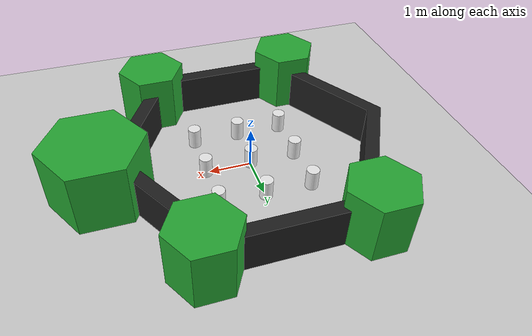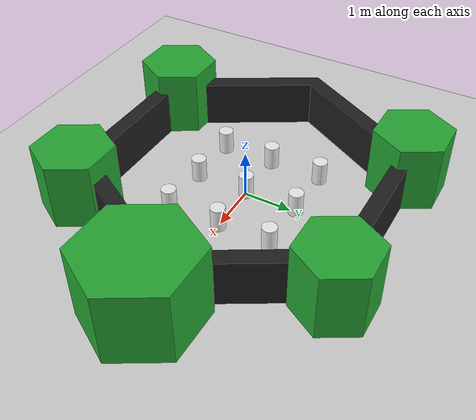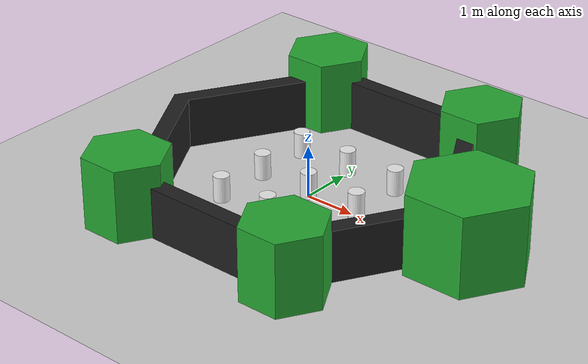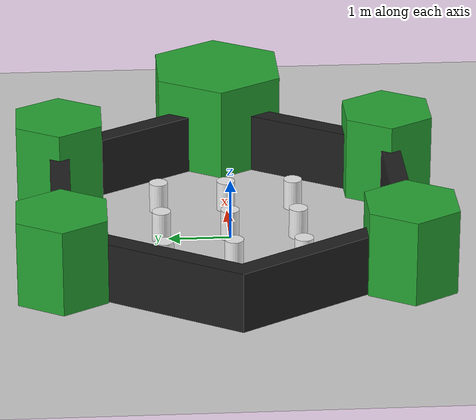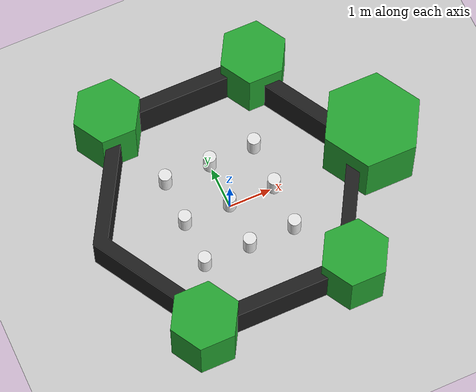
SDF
<sdf version="1.7">
 <world name="default">
  <light name="sun" type="directional">
   <pose>0 0 10 0 -0 0</pose>
   <diffuse>0.8 0.8 0.8 1</diffuse>
   <specular>0.2 0.2 0.2 1</specular>
   <attenuation>
    <range>1000</range>
    <constant>0.9</constant>
    <linear>0.01</linear>
    <quadratic>0.001</quadratic>
   </attenuation>
   <direction>-0.5 0.1 -0.9</direction>
   <spot><inner_angle>0</inner_angle><outer_angle>0</outer_angle><falloff>0</falloff></spot>
  </light>
  <model name="ground_plane">
   <static>1</static>
   <link name="link">
    <collision name="collision">
     <geometry><plane><normal>0 0 1</normal><size>100 100</size></plane></geometry>
     <surface>
      <contact><collide_bitmask>65535</collide_bitmask></contact>
      <friction><ode><mu>100</mu><mu2>50</mu2></ode></friction>
     </surface>
    </collision>
    <visual name="visual">
     <cast_shadows>0</cast_shadows>
     <geometry><plane><normal>0 0 1</normal><size>100 100</size></plane></geometry>
     <material>
      <script><uri>file://media/materials/scripts/gazebo.material</uri><name>Gazebo/Grey</name></script>
     </material>
    </visual>
   </link>
  </model>
  <gravity>0 0 -9.8</gravity>
  <magnetic_field>6e-06 2.3e-05 -4.2e-05</magnetic_field>
  <atmosphere type="adiabatic"/>
  <physics type="ode">
   <max_step_size>0.001</max_step_size>
   <real_time_factor>1</real_time_factor>
   <real_time_update_rate>1000</real_time_update_rate>
  </physics>
  <scene><ambient>0.4 0.4 0.4 1</ambient><background>0.7 0.7 0.7 1</background><shadows>1</shadows></scene>
  <audio><device>default</device></audio>
  <spherical_coordinates>
   <surface_model>EARTH_WGS84</surface_model>
   <latitude_deg>0</latitude_deg>
   <longitude_deg>0</longitude_deg>
   <elevation>0</elevation>
   <heading_deg>0</heading_deg>
  </spherical_coordinates>
  <model name="ros_symbol">
   <static>1</static>
   <link name="symbol">
    <collision name="one_one">
     <pose>-1.1 -1.1 0.25 0 -0 0</pose>
     <geometry><cylinder><radius>0.15</radius><length>0.5</length></cylinder></geometry>
    </collision>
    <visual name="one_one">
     <pose>-1.1 -1.1 0.25 0 -0 0</pose>
     <geometry><cylinder><radius>0.15</radius><length>0.5</length></cylinder></geometry>
     <material>
      <script><uri>file://media/materials/scripts/gazebo.material</uri><name>Gazebo/White</name></script>
     </material>
    </visual>
    <collision name="one_two">
     <pose>-1.1 0 0.25 0 -0 0</pose>
     <geometry><cylinder><radius>0.15</radius><length>0.5</length></cylinder></geometry>
    </collision>
    <visual name="one_two">
     <pose>-1.1 0 0.25 0 -0 0</pose>
     <geometry><cylinder><radius>0.15</radius><length>0.5</length></cylinder></geometry>
     <material>
      <script><uri>file://media/materials/scripts/gazebo.material</uri><name>Gazebo/White</name></script>
     </material>
    </visual>
    <collision name="one_three">
     <pose>-1.1 1.1 0.25 0 -0 0</pose>
     <geometry><cylinder><radius>0.15</radius><length>0.5</length></cylinder></geometry>
    </collision>
    <visual name="one_three">
     <pose>-1.1 1.1 0.25 0 -0 0</pose>
     <geometry><cylinder><radius>0.15</radius><length>0.5</length></cylinder></geometry>
     <material>
      <script><uri>file://media/materials/scripts/gazebo.material</uri><name>Gazebo/White</name></script>
     </material>
    </visual>
    <collision name="two_one">
     <pose>0 -1.1 0.25 0 -0 0</pose>
     <geometry><cylinder><radius>0.15</radius><length>0.5</length></cylinder></geometry>
    </collision>
    <visual name="two_one">
     <pose>0 -1.1 0.25 0 -0 0</pose>
     <geometry><cylinder><radius>0.15</radius><length>0.5</length></cylinder></geometry>
     <material>
      <script><uri>file://media/materials/scripts/gazebo.material</uri><name>Gazebo/White</name></script>
     </material>
    </visual>
    <collision name="two_two">
     <pose>0 0 0.25 0 -0 0</pose>
     <geometry><cylinder><radius>0.15</radius><length>0.5</length></cylinder></geometry>
    </collision>
    <visual name="two_two">
     <pose>0 0 0.25 0 -0 0</pose>
     <geometry><cylinder><radius>0.15</radius><length>0.5</length></cylinder></geometry>
     <material>
      <script><uri>file://media/materials/scripts/gazebo.material</uri><name>Gazebo/White</name></script>
     </material>
    </visual>
    <collision name="two_three">
     <pose>0 1.1 0.25 0 -0 0</pose>
     <geometry><cylinder><radius>0.15</radius><length>0.5</length></cylinder></geometry>
    </collision>
    <visual name="two_three">
     <pose>0 1.1 0.25 0 -0 0</pose>
     <geometry><cylinder><radius>0.15</radius><length>0.5</length></cylinder></geometry>
     <material>
      <script><uri>file://media/materials/scripts/gazebo.material</uri><name>Gazebo/White</name></script>
     </material>
    </visual>
    <collision name="three_one">
     <pose>1.1 -1.1 0.25 0 -0 0</pose>
     <geometry><cylinder><radius>0.15</radius><length>0.5</length></cylinder></geometry>
    </collision>
    <visual name="three_one">
     <pose>1.1 -1.1 0.25 0 -0 0</pose>
     <geometry><cylinder><radius>0.15</radius><length>0.5</length></cylinder></geometry>
     <material>
      <script><uri>file://media/materials/scripts/gazebo.material</uri><name>Gazebo/White</name></script>
     </material>
    </visual>
    <collision name="three_two">
     <pose>1.1 0 0.25 0 -0 0</pose>
     <geometry><cylinder><radius>0.15</radius><length>0.5</length></cylinder></geometry>
    </collision>
    <visual name="three_two">
     <pose>1.1 0 0.25 0 -0 0</pose>
     <geometry><cylinder><radius>0.15</radius><length>0.5</length></cylinder></geometry>
     <material>
      <script><uri>file://media/materials/scripts/gazebo.material</uri><name>Gazebo/White</name></script>
     </material>
    </visual>
    <collision name="three_three">
     <pose>1.1 1.1 0.25 0 -0 0</pose>
     <geometry><cylinder><radius>0.15</radius><length>0.5</length></cylinder></geometry>
    </collision>
    <visual name="three_three">
     <pose>1.1 1.1 0.25 0 -0 0</pose>
     <geometry><cylinder><radius>0.15</radius><length>0.5</length></cylinder></geometry>
     <material>
      <script><uri>file://media/materials/scripts/gazebo.material</uri><name>Gazebo/White</name></script>
     </material>
    </visual>
    <collision name="head">
     <pose>3.5 0 -0.5 0 -0 0</pose>
     <geometry>
      <mesh><uri>model://turtlebot3_world/meshes/hexagon.dae</uri><scale>0.8 0.8 0.8</scale></mesh>
     </geometry>
    </collision>
    <visual name="head">
     <pose>3.5 0 -0.5 0 -0 0</pose>
     <geometry>
      <mesh><uri>model://turtlebot3_world/meshes/hexagon.dae</uri><scale>0.8 0.8 0.8</scale></mesh>
     </geometry>
     <material>
      <script><uri>file://media/materials/scripts/gazebo.material</uri><name>Gazebo/Green</name></script>
     </material>
    </visual>
    <collision name="left_hand">
     <pose>1.8 2.7 0 0 -0 0</pose>
     <geometry>
      <mesh><uri>model://turtlebot3_world/meshes/hexagon.dae</uri><scale>0.55 0.55 0.55</scale></mesh>
     </geometry>
    </collision>
    <visual name="left_hand">
     <pose>1.8 2.7 0 0 -0 0</pose>
     <geometry>
      <mesh><uri>model://turtlebot3_world/meshes/hexagon.dae</uri><scale>0.55 0.55 0.55</scale></mesh>
     </geometry>
     <material>
      <script><uri>file://media/materials/scripts/gazebo.material</uri><name>Gazebo/Green</name></script>
     </material>
    </visual>
    <collision name="right_hand">
     <pose>1.8 -2.7 0 0 -0 0</pose>
     <geometry>
      <mesh><uri>model://turtlebot3_world/meshes/hexagon.dae</uri><scale>0.55 0.55 0.55</scale></mesh>
     </geometry>
    </collision>
    <visual name="right_hand">
     <pose>1.8 -2.7 0 0 -0 0</pose>
     <geometry>
      <mesh><uri>model://turtlebot3_world/meshes/hexagon.dae</uri><scale>0.55 0.55 0.55</scale></mesh>
     </geometry>
     <material>
      <script><uri>file://media/materials/scripts/gazebo.material</uri><name>Gazebo/Green</name></script>
     </material>
    </visual>
    <collision name="left_foot">
     <pose>-1.8 2.7 0 0 -0 0</pose>
     <geometry>
      <mesh><uri>model://turtlebot3_world/meshes/hexagon.dae</uri><scale>0.55 0.55 0.55</scale></mesh>
     </geometry>
    </collision>
    <visual name="left_foot">
     <pose>-1.8 2.7 0 0 -0 0</pose>
     <geometry>
      <mesh><uri>model://turtlebot3_world/meshes/hexagon.dae</uri><scale>0.55 0.55 0.55</scale></mesh>
     </geometry>
     <material>
      <script><uri>file://media/materials/scripts/gazebo.material</uri><name>Gazebo/Green</name></script>
     </material>
    </visual>
    <collision name="right_foot">
     <pose>-1.8 -2.7 0 0 -0 0</pose>
     <geometry>
      <mesh><uri>model://turtlebot3_world/meshes/hexagon.dae</uri><scale>0.55 0.55 0.55</scale></mesh>
     </geometry>
    </collision>
    <visual name="right_foot">
     <pose>-1.8 -2.7 0 0 -0 0</pose>
     <geometry>
      <mesh><uri>model://turtlebot3_world/meshes/hexagon.dae</uri><scale>0.55 0.55 0.55</scale></mesh>
     </geometry>
     <material>
      <script><uri>file://media/materials/scripts/gazebo.material</uri><name>Gazebo/Green</name></script>
     </material>
    </visual>
    <collision name="body">
     <pose>0 0 -0.3 0 0 -1.5708</pose>
     <geometry>
      <mesh><uri>model://turtlebot3_world/meshes/wall.dae</uri><scale>0.25 0.25 0.25</scale></mesh>
     </geometry>
    </collision>
    <visual name="body">
     <pose>0 0 -0.3 0 0 -1.5708</pose>
     <geometry>
      <mesh><uri>model://turtlebot3_world/meshes/wall.dae</uri><scale>0.25 0.25 0.25</scale></mesh>
     </geometry>
     <material>
      <script><uri>file://media/materials/scripts/gazebo.material</uri><name>Gazebo/FlatBlack</name></script>
     </material>
    </visual>
   </link>
   <pose>-0.006161 0.011869 0 0 -0 0</pose>
  </model>
  <light name="user_point_light_0" type="point">
   <pose>1.75726 -0.031152 1 0 -0 0</pose>
   <diffuse>0.5 0.5 0.5 1</diffuse>
   <specular>0.1 0.1 0.1 1</specular>
   <attenuation>
    <range>20</range>
    <constant>0.5</constant>
    <linear>0.01</linear>
    <quadratic>0.001</quadratic>
   </attenuation>
   <cast_shadows>0</cast_shadows>
   <direction>0 0 -1</direction>
  </light>
  <light name="user_point_light_1" type="point">
   <pose>1.13707 1.57875 1 0 -0 0</pose>
   <diffuse>0.5 0.5 0.5 1</diffuse>
   <specular>0.1 0.1 0.1 1</specular>
   <attenuation>
    <range>20</range>
    <constant>0.5</constant>
    <linear>0.01</linear>
    <quadratic>0.001</quadratic>
   </attenuation>
   <cast_shadows>0</cast_shadows>
   <direction>0 0 -1</direction>
  </light>
  <light name="user_point_light_2" type="point">
   <pose>-1.14584 1.57875 1 0 -0 0</pose>
   <diffuse>0.5 0.5 0.5 1</diffuse>
   <specular>0.1 0.1 0.1 1</specular>
   <attenuation>
    <range>20</range>
    <constant>0.5</constant>
    <linear>0.01</linear>
    <quadratic>0.001</quadratic>
   </attenuation>
   <cast_shadows>0</cast_shadows>
   <direction>0 0 -1</direction>
  </light>
  <light name="user_point_light_3" type="point">
   <pose>-2.17512 -0.031152 1 0 -0 0</pose>
   <diffuse>0.5 0.5 0.5 1</diffuse>
   <specular>0.1 0.1 0.1 1</specular>
   <attenuation>
    <range>20</range>
    <constant>0.5</constant>
    <linear>0.01</linear>
    <quadratic>0.001</quadratic>
   </attenuation>
   <cast_shadows>0</cast_shadows>
   <direction>0 0 -1</direction>
  </light>
  <light name="user_point_light_4" type="point">
   <pose>-1.06666 -1.62786 1 0 -0 0</pose>
   <diffuse>0.5 0.5 0.5 1</diffuse>
   <specular>0.1 0.1 0.1 1</specular>
   <attenuation>
    <range>20</range>
    <constant>0.5</constant>
    <linear>0.01</linear>
    <quadratic>0.001</quadratic>
   </attenuation>
   <cast_shadows>0</cast_shadows>
   <direction>0 0 -1</direction>
  </light>
  <light name="user_point_light_5" type="point">
   <pose>1.16344 -1.58827 1 0 -0 0</pose>
   <diffuse>0.5 0.5 0.5 1</diffuse>
   <specular>0.1 0.1 0.1 1</specular>
   <attenuation>
    <range>20</range>
    <constant>0.5</constant>
    <linear>0.01</linear>
    <quadratic>0.001</quadratic>
   </attenuation>
   <cast_shadows>0</cast_shadows>
   <direction>0 0 -1</direction>
  </light>
  <light name="user_point_light_6" type="point">
   <pose>-0.024175 -0.017956 1 0 -0 0</pose>
   <diffuse>0.5 0.5 0.5 1</diffuse>
   <specular>0.1 0.1 0.1 1</specular>
   <attenuation>
    <range>20</range>
    <constant>0.5</constant>
    <linear>0.01</linear>
    <quadratic>0.001</quadratic>
   </attenuation>
   <cast_shadows>0</cast_shadows>
   <direction>0 0 -1</direction>
  </light>
 </world>
</sdf>
